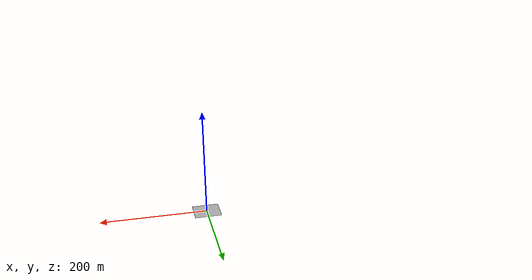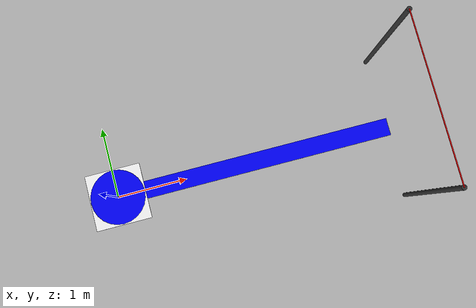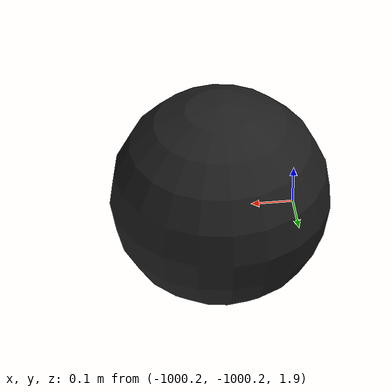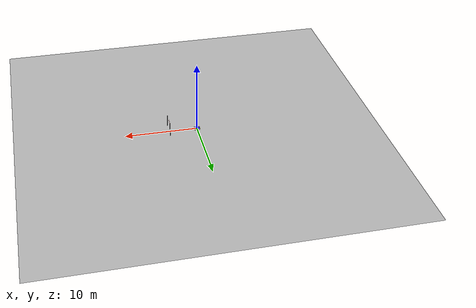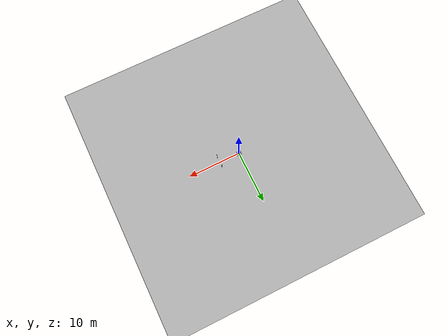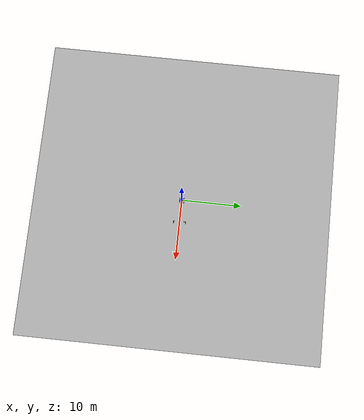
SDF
<?xml version="1.0" ?>
<sdf version="1.10">
  <world name="sae2">

    <physics type="ode">
      <max_step_size>0.004</max_step_size>
      <real_time_factor>1.0</real_time_factor>
      <real_time_update_rate>250</real_time_update_rate>
    </physics>

    <plugin name="gz::sim::systems::Physics" filename="gz-sim-physics-system"/>
    <plugin name="gz::sim::systems::UserCommands" filename="gz-sim-user-commands-system"/>
    <plugin name="gz::sim::systems::SceneBroadcaster" filename="gz-sim-scene-broadcaster-system"/>
    <plugin name="gz::sim::systems::Contact" filename="gz-sim-contact-system"/>
    <plugin name="gz::sim::systems::Imu" filename="gz-sim-imu-system"/>
    <plugin name="gz::sim::systems::AirPressure" filename="gz-sim-air-pressure-system"/>
    <plugin name="gz::sim::systems::ApplyLinkWrench" filename="gz-sim-apply-link-wrench-system"/>
    <plugin name="gz::sim::systems::NavSat" filename="gz-sim-navsat-system"/>
    <plugin name="gz::sim::systems::Sensors" filename="gz-sim-sensors-system">
      <render_engine>ogre2</render_engine>
    </plugin>

    <gravity>0 0 -9.8</gravity>
    <magnetic_field>6e-06 2.3e-05 -4.2e-05</magnetic_field>
    <atmosphere type="adiabatic"/>

    <spherical_coordinates>
      <surface_model>EARTH_WGS84</surface_model>
      <world_frame_orientation>ENU</world_frame_orientation>
      <latitude_deg>-23.203008</latitude_deg>
      <longitude_deg>-45.874897</longitude_deg>
      <elevation>0</elevation>
    </spherical_coordinates>

    <scene>
      <ambient>0.4 0.4 0.4 1</ambient>
      <background>0.7 0.7 0.7 1</background>
      <shadows>true</shadows>
      <sky>
        <clouds />
      </sky>
    </scene>

    <light type="directional" name="sun">
      <cast_shadows>true</cast_shadows>
      <pose>0 0 20 0 0 0</pose>
      <ambient>0.8 0.8 0.8 1</ambient>
      <diffuse>1.0 1.0 1.0 1</diffuse>
      <specular>0.2 0.2 0.2 1</specular>
      <attenuation>
        <range>1000</range>
        <constant>0.9</constant>
        <linear>0.01</linear>
        <quadratic>0.001</quadratic>
      </attenuation>
      <direction>-0.5 0.1 -0.9</direction>
    </light>

    <!-- ground plane -->
    <model name="ground_plane">
      <static>true</static>
      <link name="link">
        <collision name="collision">
          <pose>0 0 0 0 0 0</pose>
          <geometry>
            <plane>
              <normal>0 0 1</normal>
              <size>250 250</size>
            </plane>
          </geometry>
          <surface>
            <friction>
              <ode>
                <mu>1</mu>
                <mu2>1</mu2>
              </ode>
            </friction>
          </surface>
        </collision>
        <visual name="grass">
          <pose>0 0 0 0 0 0</pose>
          <cast_shadows>false</cast_shadows>
          <geometry>
            <mesh>
              <uri>file://grass_plane/meshes/grass_plane.dae</uri>
            </mesh>
          </geometry>
        </visual>
      </link>
    </model>

    <!-- THE VOID -->
    <model name="the_void">
      <static>1</static>
      <link name="link">
        <pose frame="">0 0 0.1 0 -0 0</pose>
        <visual name="the_void">
          <pose frame="">0 0 2 0 -0 0</pose>
          <geometry>
            <sphere>
              <radius>0.25</radius>
            </sphere>
          </geometry>
          <material>
            <script>
              <uri>file://media/materials/scripts/Gazebo.material</uri>
              <name>Gazebo/Black</name>
            </script>
          </material>
        </visual>
        <self_collide>0</self_collide>
        <enable_wind>0</enable_wind>
        <kinematic>0</kinematic>
      </link>
      <pose frame="">-1000 -1000 0 0 0 0</pose>
    </model>

    <!-- user camera -->
    <gui>
      <camera name="camera">
        <pose>-4 -4 7 0 0.4 0.89</pose>
      </camera>
    </gui>
    <!-- Plataforma de Takeoff -->
    <include>
      <uri>model://sae/plataforma_com_circulo</uri>
      <pose>0.0 0.0 0.0 0 0 0</pose>
    </include>

    <!-- Mangueira com suportes -->
    <model name="mangueira_com_suportes">
      <static>true</static>
      <pose>3.95 0 0 0 0 1.5708</pose>

      <link name="mangueira">
        <pose>0 0 2 0 1.5708 0</pose>
        <collision name="collision">
          <geometry>
            <cylinder>
              <radius>0.00635</radius>
              <length>2</length>
            </cylinder>
          </geometry>
        </collision>
        <visual name="visual">
          <geometry>
            <cylinder>
              <radius>0.00635</radius>
              <length>2</length>
            </cylinder>
          </geometry>
          <material>
            <ambient>0.8 0 0 1</ambient>
            <diffuse>1 0 0 1</diffuse>
          </material>
        </visual>
      </link>

      <link name="poste_esquerdo">
        <pose>-1 0 1 0 0 0</pose>
        <collision name="collision">
          <geometry>
            <cylinder>
              <radius>0.03</radius>
              <length>2</length>
            </cylinder>
          </geometry>
        </collision>
        <visual name="visual">
          <geometry>
            <cylinder>
              <radius>0.03</radius>
              <length>2</length>
            </cylinder>
          </geometry>
          <material>
            <ambient>0.2 0.2 0.2 1</ambient>
            <diffuse>0.2 0.2 0.2 1</diffuse>
          </material>
        </visual>
      </link>

      <link name="poste_direito">
        <pose>1 0 1 0 0 0</pose>
        <collision name="collision">
          <geometry>
            <cylinder>
              <radius>0.03</radius>
              <length>2</length>
            </cylinder>
          </geometry>
        </collision>
        <visual name="visual">
          <geometry>
            <cylinder>
              <radius>0.03</radius>
              <length>2</length>
            </cylinder>
          </geometry>
          <material>
            <ambient>0.2 0.2 0.2 1</ambient>
            <diffuse>0.2 0.2 0.2 1</diffuse>
          </material>
        </visual>
      </link>
    </model>

    <!-- Faixas azuis caminho -->
    <model name="faixa_1">
      <static>true</static>
      <pose> 2.2 0 0 0 0 0</pose>
      <link name="link">
        <visual name="visual">
          <geometry>
            <box>
              <size>3.6 0.25 0.01</size>
            </box>
          </geometry>
          <material>
            <ambient>0 0 1 1</ambient>
            <diffuse>0 0 1 1</diffuse>
          </material>
        </visual>
      </link>
    </model>
  </world>
</sdf>

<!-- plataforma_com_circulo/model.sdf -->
<sdf version="1.10">
  <model name="plataforma_com_circulo">
    <static>true</static>
    <pose>0 0 0.005 0 0 0</pose> <!-- levemente acima do solo -->
    <link name="link">

      <!-- Base branca (quadrado) -->
      <visual name="base">
        <pose>0 0 0 0 0 0</pose>
        <geometry>
          <box>
            <size>0.8 0.8 0.01</size>
          </box>
        </geometry>
        <material>
          <ambient>1 1 1 1</ambient>
          <diffuse>1 1 1 1</diffuse>
        </material>
      </visual>

      <!-- Círculo azul por cima -->
      <visual name="circle">
        <pose>0 0 0.011 0 0 0</pose> <!-- ligeiramente acima da base -->
        <geometry>
          <cylinder>
            <radius>0.39</radius> <!-- ajustável -->
            <length>0.001</length>
          </cylinder>
        </geometry>
        <material>
          <ambient>0 0 1 1</ambient>
          <diffuse>0 0 1 1</diffuse>
        </material>
      </visual>

    </link>
  </model>
</sdf>
